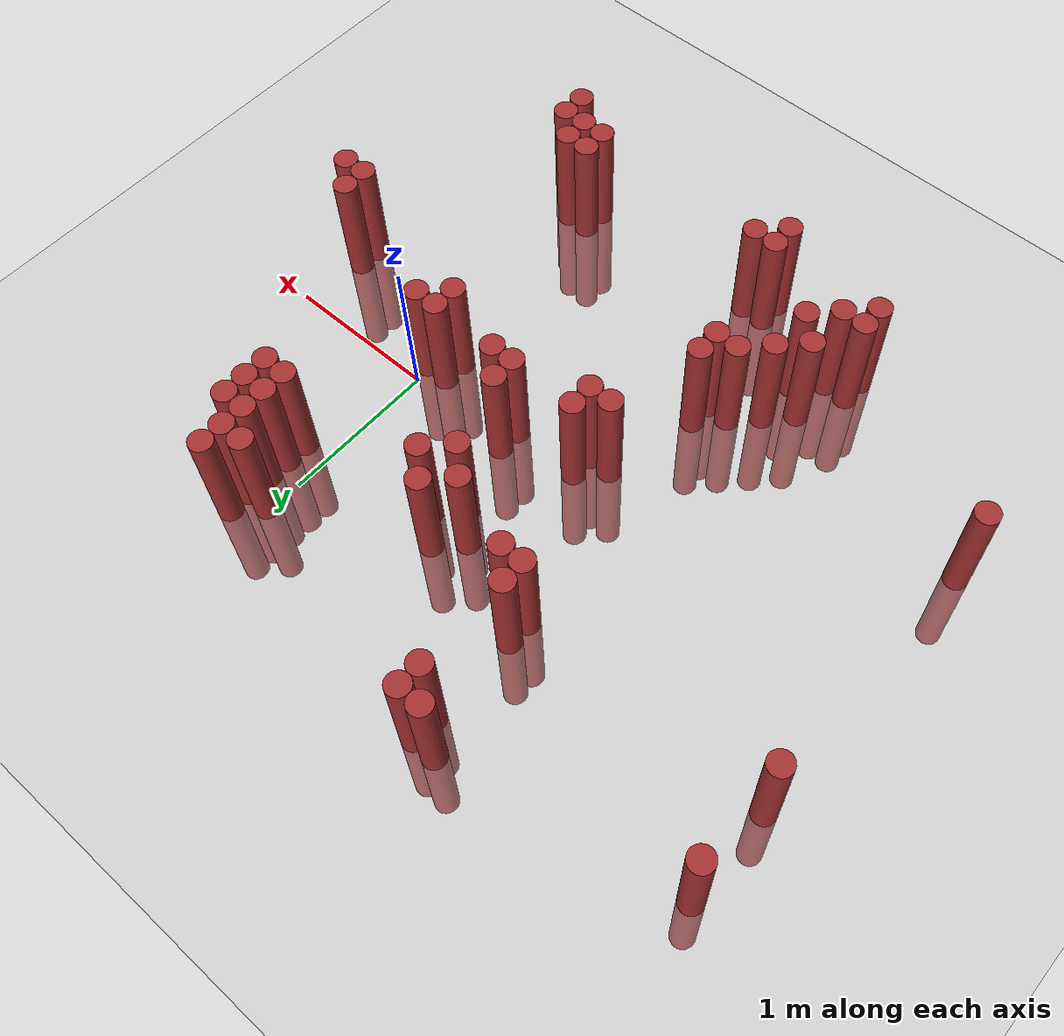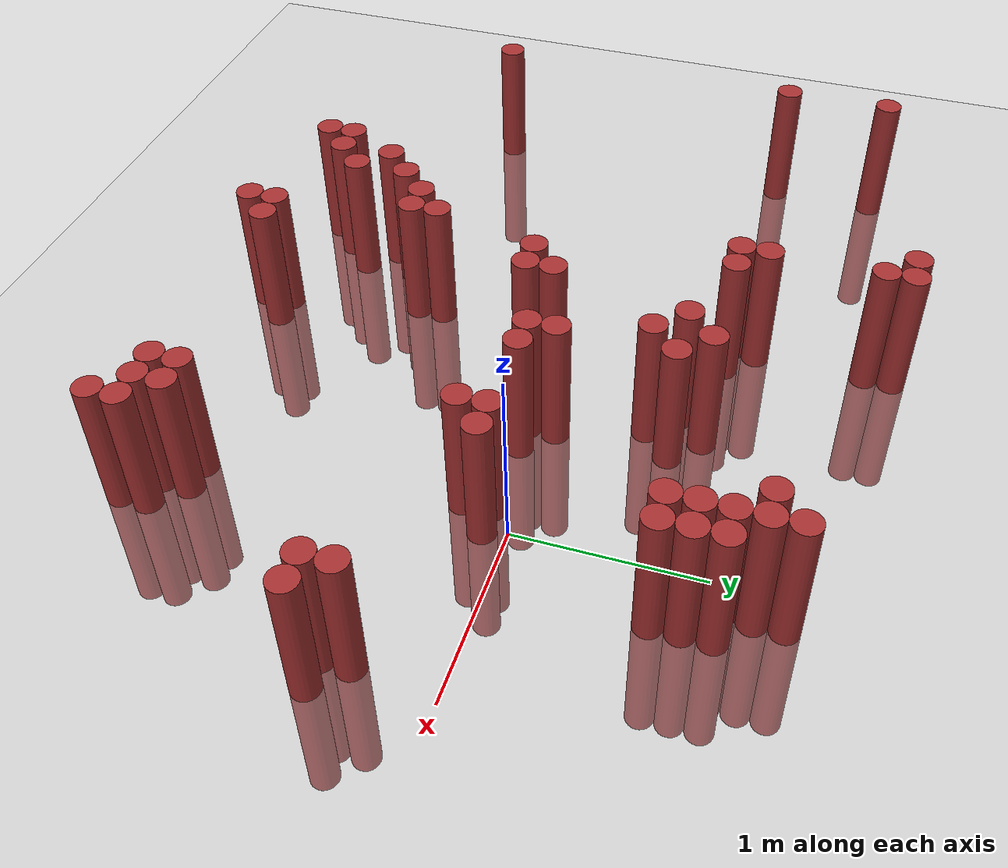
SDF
<sdf version="1.6">
 <world name="default">
  <model name="ground_plane">
   <static>1</static>
   <link name="link">
    <collision name="collision">
     <geometry><plane><normal>0 0 1</normal><size>100 100</size></plane></geometry>
     <surface><friction><ode><mu>100</mu><mu2>50</mu2></ode></friction></surface>
    </collision>
    <visual name="visual">
     <cast_shadows>0</cast_shadows>
     <geometry><plane><normal>0 0 1</normal><size>100 100</size></plane></geometry>
     <material>
      <script><uri>file://media/materials/scripts/gazebo.material</uri><name>Gazebo/Grey</name></script>
     </material>
    </visual>
   </link>
  </model>
  <model name="unit_cylinder_260">
   <static>1</static>
   <pose>-3.275000 -1.025000 0.000000 0.000000 0.000000 0.000000</pose>
   <link name="link">
    <inertial>
     <mass>1</mass>
     <inertia><ixx>0.145833</ixx><ixy>0</ixy><ixz>0</ixz><iyy>0.145833</iyy><iyz>0</iyz><izz>0.125</izz></inertia>
    </inertial>
    <collision name="collision">
     <geometry><cylinder><radius>0.075000</radius><length>1.5</length></cylinder></geometry>
    </collision>
    <visual name="visual">
     <geometry><cylinder><radius>0.075000</radius><length>1.5</length></cylinder></geometry>
     <material>
      <ambient>0.648000 0.192000 0.192000 1</ambient>
      <diffuse>0.648000 0.192000 0.192000 1</diffuse>
     </material>
     <material>
      <script><name>Gazebo/Grey</name><uri>file://media/materials/scripts/gazebo.material</uri></script>
     </material>
    </visual>
   </link>
  </model>
  <model name="unit_cylinder_261">
   <static>1</static>
   <pose>-3.275000 0.775000 0.000000 0.000000 0.000000 0.000000</pose>
   <link name="link">
    <inertial>
     <mass>1</mass>
     <inertia><ixx>0.145833</ixx><ixy>0</ixy><ixz>0</ixz><iyy>0.145833</iyy><iyz>0</iyz><izz>0.125</izz></inertia>
    </inertial>
    <collision name="collision">
     <geometry><cylinder><radius>0.075000</radius><length>1.5</length></cylinder></geometry>
    </collision>
    <visual name="visual">
     <geometry><cylinder><radius>0.075000</radius><length>1.5</length></cylinder></geometry>
     <material>
      <ambient>0.648000 0.192000 0.192000 1</ambient>
      <diffuse>0.648000 0.192000 0.192000 1</diffuse>
     </material>
     <material>
      <script><name>Gazebo/Grey</name><uri>file://media/materials/scripts/gazebo.material</uri></script>
     </material>
    </visual>
   </link>
  </model>
  <model name="unit_cylinder_262">
   <static>1</static>
   <pose>-3.275000 1.375000 0.000000 0.000000 0.000000 0.000000</pose>
   <link name="link">
    <inertial>
     <mass>1</mass>
     <inertia><ixx>0.145833</ixx><ixy>0</ixy><ixz>0</ixz><iyy>0.145833</iyy><iyz>0</iyz><izz>0.125</izz></inertia>
    </inertial>
    <collision name="collision">
     <geometry><cylinder><radius>0.075000</radius><length>1.5</length></cylinder></geometry>
    </collision>
    <visual name="visual">
     <geometry><cylinder><radius>0.075000</radius><length>1.5</length></cylinder></geometry>
     <material>
      <ambient>0.648000 0.192000 0.192000 1</ambient>
      <diffuse>0.648000 0.192000 0.192000 1</diffuse>
     </material>
     <material>
      <script><name>Gazebo/Grey</name><uri>file://media/materials/scripts/gazebo.material</uri></script>
     </material>
    </visual>
   </link>
  </model>
  <model name="unit_cylinder_310">
   <static>1</static>
   <pose>-2.075000 -1.775000 0.000000 0.000000 0.000000 0.000000</pose>
   <link name="link">
    <inertial>
     <mass>1</mass>
     <inertia><ixx>0.145833</ixx><ixy>0</ixy><ixz>0</ixz><iyy>0.145833</iyy><iyz>0</iyz><izz>0.125</izz></inertia>
    </inertial>
    <collision name="collision">
     <geometry><cylinder><radius>0.075000</radius><length>1.5</length></cylinder></geometry>
    </collision>
    <visual name="visual">
     <geometry><cylinder><radius>0.075000</radius><length>1.5</length></cylinder></geometry>
     <material>
      <ambient>0.648000 0.192000 0.192000 1</ambient>
      <diffuse>0.648000 0.192000 0.192000 1</diffuse>
     </material>
     <material>
      <script><name>Gazebo/Grey</name><uri>file://media/materials/scripts/gazebo.material</uri></script>
     </material>
    </visual>
   </link>
  </model>
  <model name="unit_cylinder_311">
   <static>1</static>
   <pose>-2.075000 -1.625000 0.000000 0.000000 0.000000 0.000000</pose>
   <link name="link">
    <inertial>
     <mass>1</mass>
     <inertia><ixx>0.145833</ixx><ixy>0</ixy><ixz>0</ixz><iyy>0.145833</iyy><iyz>0</iyz><izz>0.125</izz></inertia>
    </inertial>
    <collision name="collision">
     <geometry><cylinder><radius>0.075000</radius><length>1.5</length></cylinder></geometry>
    </collision>
    <visual name="visual">
     <geometry><cylinder><radius>0.075000</radius><length>1.5</length></cylinder></geometry>
     <material>
      <ambient>0.648000 0.192000 0.192000 1</ambient>
      <diffuse>0.648000 0.192000 0.192000 1</diffuse>
     </material>
     <material>
      <script><name>Gazebo/Grey</name><uri>file://media/materials/scripts/gazebo.material</uri></script>
     </material>
    </visual>
   </link>
  </model>
  <model name="unit_cylinder_314">
   <static>1</static>
   <pose>-1.925000 -1.625000 0.000000 0.000000 0.000000 0.000000</pose>
   <link name="link">
    <inertial>
     <mass>1</mass>
     <inertia><ixx>0.145833</ixx><ixy>0</ixy><ixz>0</ixz><iyy>0.145833</iyy><iyz>0</iyz><izz>0.125</izz></inertia>
    </inertial>
    <collision name="collision">
     <geometry><cylinder><radius>0.075000</radius><length>1.5</length></cylinder></geometry>
    </collision>
    <visual name="visual">
     <geometry><cylinder><radius>0.075000</radius><length>1.5</length></cylinder></geometry>
     <material>
      <ambient>0.648000 0.192000 0.192000 1</ambient>
      <diffuse>0.648000 0.192000 0.192000 1</diffuse>
     </material>
     <material>
      <script><name>Gazebo/Grey</name><uri>file://media/materials/scripts/gazebo.material</uri></script>
     </material>
    </visual>
   </link>
  </model>
  <model name="unit_cylinder_315">
   <static>1</static>
   <pose>-1.925000 -1.325000 0.000000 0.000000 0.000000 0.000000</pose>
   <link name="link">
    <inertial>
     <mass>1</mass>
     <inertia><ixx>0.145833</ixx><ixy>0</ixy><ixz>0</ixz><iyy>0.145833</iyy><iyz>0</iyz><izz>0.125</izz></inertia>
    </inertial>
    <collision name="collision">
     <geometry><cylinder><radius>0.075000</radius><length>1.5</length></cylinder></geometry>
    </collision>
    <visual name="visual">
     <geometry><cylinder><radius>0.075000</radius><length>1.5</length></cylinder></geometry>
     <material>
      <ambient>0.648000 0.192000 0.192000 1</ambient>
      <diffuse>0.648000 0.192000 0.192000 1</diffuse>
     </material>
     <material>
      <script><name>Gazebo/Grey</name><uri>file://media/materials/scripts/gazebo.material</uri></script>
     </material>
    </visual>
   </link>
  </model>
  <model name="unit_cylinder_316">
   <static>1</static>
   <pose>-1.775000 -1.475000 0.000000 0.000000 0.000000 0.000000</pose>
   <link name="link">
    <inertial>
     <mass>1</mass>
     <inertia><ixx>0.145833</ixx><ixy>0</ixy><ixz>0</ixz><iyy>0.145833</iyy><iyz>0</iyz><izz>0.125</izz></inertia>
    </inertial>
    <collision name="collision">
     <geometry><cylinder><radius>0.075000</radius><length>1.5</length></cylinder></geometry>
    </collision>
    <visual name="visual">
     <geometry><cylinder><radius>0.075000</radius><length>1.5</length></cylinder></geometry>
     <material>
      <ambient>0.648000 0.192000 0.192000 1</ambient>
      <diffuse>0.648000 0.192000 0.192000 1</diffuse>
     </material>
     <material>
      <script><name>Gazebo/Grey</name><uri>file://media/materials/scripts/gazebo.material</uri></script>
     </material>
    </visual>
   </link>
  </model>
  <model name="unit_cylinder_317">
   <static>1</static>
   <pose>-1.775000 -1.175000 0.000000 0.000000 0.000000 0.000000</pose>
   <link name="link">
    <inertial>
     <mass>1</mass>
     <inertia><ixx>0.145833</ixx><ixy>0</ixy><ixz>0</ixz><iyy>0.145833</iyy><iyz>0</iyz><izz>0.125</izz></inertia>
    </inertial>
    <collision name="collision">
     <geometry><cylinder><radius>0.075000</radius><length>1.5</length></cylinder></geometry>
    </collision>
    <visual name="visual">
     <geometry><cylinder><radius>0.075000</radius><length>1.5</length></cylinder></geometry>
     <material>
      <ambient>0.648000 0.192000 0.192000 1</ambient>
      <diffuse>0.648000 0.192000 0.192000 1</diffuse>
     </material>
     <material>
      <script><name>Gazebo/Grey</name><uri>file://media/materials/scripts/gazebo.material</uri></script>
     </material>
    </visual>
   </link>
  </model>
  <model name="unit_cylinder_318">
   <static>1</static>
   <pose>-1.775000 1.675000 0.000000 0.000000 0.000000 0.000000</pose>
   <link name="link">
    <inertial>
     <mass>1</mass>
     <inertia><ixx>0.145833</ixx><ixy>0</ixy><ixz>0</ixz><iyy>0.145833</iyy><iyz>0</iyz><izz>0.125</izz></inertia>
    </inertial>
    <collision name="collision">
     <geometry><cylinder><radius>0.075000</radius><length>1.5</length></cylinder></geometry>
    </collision>
    <visual name="visual">
     <geometry><cylinder><radius>0.075000</radius><length>1.5</length></cylinder></geometry>
     <material>
      <ambient>0.648000 0.192000 0.192000 1</ambient>
      <diffuse>0.648000 0.192000 0.192000 1</diffuse>
     </material>
     <material>
      <script><name>Gazebo/Grey</name><uri>file://media/materials/scripts/gazebo.material</uri></script>
     </material>
    </visual>
   </link>
  </model>
  <model name="unit_cylinder_319">
   <static>1</static>
   <pose>-1.625000 -1.025000 0.000000 0.000000 0.000000 0.000000</pose>
   <link name="link">
    <inertial>
     <mass>1</mass>
     <inertia><ixx>0.145833</ixx><ixy>0</ixy><ixz>0</ixz><iyy>0.145833</iyy><iyz>0</iyz><izz>0.125</izz></inertia>
    </inertial>
    <collision name="collision">
     <geometry><cylinder><radius>0.075000</radius><length>1.5</length></cylinder></geometry>
    </collision>
    <visual name="visual">
     <geometry><cylinder><radius>0.075000</radius><length>1.5</length></cylinder></geometry>
     <material>
      <ambient>0.648000 0.192000 0.192000 1</ambient>
      <diffuse>0.648000 0.192000 0.192000 1</diffuse>
     </material>
     <material>
      <script><name>Gazebo/Grey</name><uri>file://media/materials/scripts/gazebo.material</uri></script>
     </material>
    </visual>
   </link>
  </model>
  <model name="unit_cylinder_320">
   <static>1</static>
   <pose>-1.625000 0.775000 0.000000 0.000000 0.000000 0.000000</pose>
   <link name="link">
    <inertial>
     <mass>1</mass>
     <inertia><ixx>0.145833</ixx><ixy>0</ixy><ixz>0</ixz><iyy>0.145833</iyy><iyz>0</iyz><izz>0.125</izz></inertia>
    </inertial>
    <collision name="collision">
     <geometry><cylinder><radius>0.075000</radius><length>1.5</length></cylinder></geometry>
    </collision>
    <visual name="visual">
     <geometry><cylinder><radius>0.075000</radius><length>1.5</length></cylinder></geometry>
     <material>
      <ambient>0.648000 0.192000 0.192000 1</ambient>
      <diffuse>0.648000 0.192000 0.192000 1</diffuse>
     </material>
     <material>
      <script><name>Gazebo/Grey</name><uri>file://media/materials/scripts/gazebo.material</uri></script>
     </material>
    </visual>
   </link>
  </model>
  <model name="unit_cylinder_321">
   <static>1</static>
   <pose>-1.625000 0.925000 0.000000 0.000000 0.000000 0.000000</pose>
   <link name="link">
    <inertial>
     <mass>1</mass>
     <inertia><ixx>0.145833</ixx><ixy>0</ixy><ixz>0</ixz><iyy>0.145833</iyy><iyz>0</iyz><izz>0.125</izz></inertia>
    </inertial>
    <collision name="collision">
     <geometry><cylinder><radius>0.075000</radius><length>1.5</length></cylinder></geometry>
    </collision>
    <visual name="visual">
     <geometry><cylinder><radius>0.075000</radius><length>1.5</length></cylinder></geometry>
     <material>
      <ambient>0.648000 0.192000 0.192000 1</ambient>
      <diffuse>0.648000 0.192000 0.192000 1</diffuse>
     </material>
     <material>
      <script><name>Gazebo/Grey</name><uri>file://media/materials/scripts/gazebo.material</uri></script>
     </material>
    </visual>
   </link>
  </model>
  <model name="unit_cylinder_322">
   <static>1</static>
   <pose>-1.625000 1.525000 0.000000 0.000000 0.000000 0.000000</pose>
   <link name="link">
    <inertial>
     <mass>1</mass>
     <inertia><ixx>0.145833</ixx><ixy>0</ixy><ixz>0</ixz><iyy>0.145833</iyy><iyz>0</iyz><izz>0.125</izz></inertia>
    </inertial>
    <collision name="collision">
     <geometry><cylinder><radius>0.075000</radius><length>1.5</length></cylinder></geometry>
    </collision>
    <visual name="visual">
     <geometry><cylinder><radius>0.075000</radius><length>1.5</length></cylinder></geometry>
     <material>
      <ambient>0.648000 0.192000 0.192000 1</ambient>
      <diffuse>0.648000 0.192000 0.192000 1</diffuse>
     </material>
     <material>
      <script><name>Gazebo/Grey</name><uri>file://media/materials/scripts/gazebo.material</uri></script>
     </material>
    </visual>
   </link>
  </model>
  <model name="unit_cylinder_323">
   <static>1</static>
   <pose>-1.625000 1.675000 0.000000 0.000000 0.000000 0.000000</pose>
   <link name="link">
    <inertial>
     <mass>1</mass>
     <inertia><ixx>0.145833</ixx><ixy>0</ixy><ixz>0</ixz><iyy>0.145833</iyy><iyz>0</iyz><izz>0.125</izz></inertia>
    </inertial>
    <collision name="collision">
     <geometry><cylinder><radius>0.075000</radius><length>1.5</length></cylinder></geometry>
    </collision>
    <visual name="visual">
     <geometry><cylinder><radius>0.075000</radius><length>1.5</length></cylinder></geometry>
     <material>
      <ambient>0.648000 0.192000 0.192000 1</ambient>
      <diffuse>0.648000 0.192000 0.192000 1</diffuse>
     </material>
     <material>
      <script><name>Gazebo/Grey</name><uri>file://media/materials/scripts/gazebo.material</uri></script>
     </material>
    </visual>
   </link>
  </model>
  <model name="unit_cylinder_324">
   <static>1</static>
   <pose>-1.475000 -1.025000 0.000000 0.000000 0.000000 0.000000</pose>
   <link name="link">
    <inertial>
     <mass>1</mass>
     <inertia><ixx>0.145833</ixx><ixy>0</ixy><ixz>0</ixz><iyy>0.145833</iyy><iyz>0</iyz><izz>0.125</izz></inertia>
    </inertial>
    <collision name="collision">
     <geometry><cylinder><radius>0.075000</radius><length>1.5</length></cylinder></geometry>
    </collision>
    <visual name="visual">
     <geometry><cylinder><radius>0.075000</radius><length>1.5</length></cylinder></geometry>
     <material>
      <ambient>0.648000 0.192000 0.192000 1</ambient>
      <diffuse>0.648000 0.192000 0.192000 1</diffuse>
     </material>
     <material>
      <script><name>Gazebo/Grey</name><uri>file://media/materials/scripts/gazebo.material</uri></script>
     </material>
    </visual>
   </link>
  </model>
  <model name="unit_cylinder_325">
   <static>1</static>
   <pose>-1.475000 -0.875000 0.000000 0.000000 0.000000 0.000000</pose>
   <link name="link">
    <inertial>
     <mass>1</mass>
     <inertia><ixx>0.145833</ixx><ixy>0</ixy><ixz>0</ixz><iyy>0.145833</iyy><iyz>0</iyz><izz>0.125</izz></inertia>
    </inertial>
    <collision name="collision">
     <geometry><cylinder><radius>0.075000</radius><length>1.5</length></cylinder></geometry>
    </collision>
    <visual name="visual">
     <geometry><cylinder><radius>0.075000</radius><length>1.5</length></cylinder></geometry>
     <material>
      <ambient>0.648000 0.192000 0.192000 1</ambient>
      <diffuse>0.648000 0.192000 0.192000 1</diffuse>
     </material>
     <material>
      <script><name>Gazebo/Grey</name><uri>file://media/materials/scripts/gazebo.material</uri></script>
     </material>
    </visual>
   </link>
  </model>
  <model name="unit_cylinder_326">
   <static>1</static>
   <pose>-1.475000 0.775000 0.000000 0.000000 0.000000 0.000000</pose>
   <link name="link">
    <inertial>
     <mass>1</mass>
     <inertia><ixx>0.145833</ixx><ixy>0</ixy><ixz>0</ixz><iyy>0.145833</iyy><iyz>0</iyz><izz>0.125</izz></inertia>
    </inertial>
    <collision name="collision">
     <geometry><cylinder><radius>0.075000</radius><length>1.5</length></cylinder></geometry>
    </collision>
    <visual name="visual">
     <geometry><cylinder><radius>0.075000</radius><length>1.5</length></cylinder></geometry>
     <material>
      <ambient>0.648000 0.192000 0.192000 1</ambient>
      <diffuse>0.648000 0.192000 0.192000 1</diffuse>
     </material>
     <material>
      <script><name>Gazebo/Grey</name><uri>file://media/materials/scripts/gazebo.material</uri></script>
     </material>
    </visual>
   </link>
  </model>
  <model name="unit_cylinder_327">
   <static>1</static>
   <pose>-1.325000 -1.925000 0.000000 0.000000 0.000000 0.000000</pose>
   <link name="link">
    <inertial>
     <mass>1</mass>
     <inertia><ixx>0.145833</ixx><ixy>0</ixy><ixz>0</ixz><iyy>0.145833</iyy><iyz>0</iyz><izz>0.125</izz></inertia>
    </inertial>
    <collision name="collision">
     <geometry><cylinder><radius>0.075000</radius><length>1.5</length></cylinder></geometry>
    </collision>
    <visual name="visual">
     <geometry><cylinder><radius>0.075000</radius><length>1.5</length></cylinder></geometry>
     <material>
      <ambient>0.648000 0.192000 0.192000 1</ambient>
      <diffuse>0.648000 0.192000 0.192000 1</diffuse>
     </material>
     <material>
      <script><name>Gazebo/Grey</name><uri>file://media/materials/scripts/gazebo.material</uri></script>
     </material>
    </visual>
   </link>
  </model>
  <model name="unit_cylinder_328">
   <static>1</static>
   <pose>-1.325000 -1.775000 0.000000 0.000000 0.000000 0.000000</pose>
   <link name="link">
    <inertial>
     <mass>1</mass>
     <inertia><ixx>0.145833</ixx><ixy>0</ixy><ixz>0</ixz><iyy>0.145833</iyy><iyz>0</iyz><izz>0.125</izz></inertia>
    </inertial>
    <collision name="collision">
     <geometry><cylinder><radius>0.075000</radius><length>1.5</length></cylinder></geometry>
    </collision>
    <visual name="visual">
     <geometry><cylinder><radius>0.075000</radius><length>1.5</length></cylinder></geometry>
     <material>
      <ambient>0.648000 0.192000 0.192000 1</ambient>
      <diffuse>0.648000 0.192000 0.192000 1</diffuse>
     </material>
     <material>
      <script><name>Gazebo/Grey</name><uri>file://media/materials/scripts/gazebo.material</uri></script>
     </material>
    </visual>
   </link>
  </model>
  <model name="unit_cylinder_329">
   <static>1</static>
   <pose>-1.325000 -0.275000 0.000000 0.000000 0.000000 0.000000</pose>
   <link name="link">
    <inertial>
     <mass>1</mass>
     <inertia><ixx>0.145833</ixx><ixy>0</ixy><ixz>0</ixz><iyy>0.145833</iyy><iyz>0</iyz><izz>0.125</izz></inertia>
    </inertial>
    <collision name="collision">
     <geometry><cylinder><radius>0.075000</radius><length>1.5</length></cylinder></geometry>
    </collision>
    <visual name="visual">
     <geometry><cylinder><radius>0.075000</radius><length>1.5</length></cylinder></geometry>
     <material>
      <ambient>0.648000 0.192000 0.192000 1</ambient>
      <diffuse>0.648000 0.192000 0.192000 1</diffuse>
     </material>
     <material>
      <script><name>Gazebo/Grey</name><uri>file://media/materials/scripts/gazebo.material</uri></script>
     </material>
    </visual>
   </link>
  </model>
  <model name="unit_cylinder_330">
   <static>1</static>
   <pose>-1.175000 -1.775000 0.000000 0.000000 0.000000 0.000000</pose>
   <link name="link">
    <inertial>
     <mass>1</mass>
     <inertia><ixx>0.145833</ixx><ixy>0</ixy><ixz>0</ixz><iyy>0.145833</iyy><iyz>0</iyz><izz>0.125</izz></inertia>
    </inertial>
    <collision name="collision">
     <geometry><cylinder><radius>0.075000</radius><length>1.5</length></cylinder></geometry>
    </collision>
    <visual name="visual">
     <geometry><cylinder><radius>0.075000</radius><length>1.5</length></cylinder></geometry>
     <material>
      <ambient>0.648000 0.192000 0.192000 1</ambient>
      <diffuse>0.648000 0.192000 0.192000 1</diffuse>
     </material>
     <material>
      <script><name>Gazebo/Grey</name><uri>file://media/materials/scripts/gazebo.material</uri></script>
     </material>
    </visual>
   </link>
  </model>
  <model name="unit_cylinder_331">
   <static>1</static>
   <pose>-1.175000 -0.275000 0.000000 0.000000 0.000000 0.000000</pose>
   <link name="link">
    <inertial>
     <mass>1</mass>
     <inertia><ixx>0.145833</ixx><ixy>0</ixy><ixz>0</ixz><iyy>0.145833</iyy><iyz>0</iyz><izz>0.125</izz></inertia>
    </inertial>
    <collision name="collision">
     <geometry><cylinder><radius>0.075000</radius><length>1.5</length></cylinder></geometry>
    </collision>
    <visual name="visual">
     <geometry><cylinder><radius>0.075000</radius><length>1.5</length></cylinder></geometry>
     <material>
      <ambient>0.648000 0.192000 0.192000 1</ambient>
      <diffuse>0.648000 0.192000 0.192000 1</diffuse>
     </material>
     <material>
      <script><name>Gazebo/Grey</name><uri>file://media/materials/scripts/gazebo.material</uri></script>
     </material>
    </visual>
   </link>
  </model>
  <model name="unit_cylinder_332">
   <static>1</static>
   <pose>-1.175000 -0.125000 0.000000 0.000000 0.000000 0.000000</pose>
   <link name="link">
    <inertial>
     <mass>1</mass>
     <inertia><ixx>0.145833</ixx><ixy>0</ixy><ixz>0</ixz><iyy>0.145833</iyy><iyz>0</iyz><izz>0.125</izz></inertia>
    </inertial>
    <collision name="collision">
     <geometry><cylinder><radius>0.075000</radius><length>1.5</length></cylinder></geometry>
    </collision>
    <visual name="visual">
     <geometry><cylinder><radius>0.075000</radius><length>1.5</length></cylinder></geometry>
     <material>
      <ambient>0.648000 0.192000 0.192000 1</ambient>
      <diffuse>0.648000 0.192000 0.192000 1</diffuse>
     </material>
     <material>
      <script><name>Gazebo/Grey</name><uri>file://media/materials/scripts/gazebo.material</uri></script>
     </material>
    </visual>
   </link>
  </model>
  <model name="unit_cylinder_335">
   <static>1</static>
   <pose>-1.025000 0.625000 0.000000 0.000000 0.000000 0.000000</pose>
   <link name="link">
    <inertial>
     <mass>1</mass>
     <inertia><ixx>0.145833</ixx><ixy>0</ixy><ixz>0</ixz><iyy>0.145833</iyy><iyz>0</iyz><izz>0.125</izz></inertia>
    </inertial>
    <collision name="collision">
     <geometry><cylinder><radius>0.075000</radius><length>1.5</length></cylinder></geometry>
    </collision>
    <visual name="visual">
     <geometry><cylinder><radius>0.075000</radius><length>1.5</length></cylinder></geometry>
     <material>
      <ambient>0.648000 0.192000 0.192000 1</ambient>
      <diffuse>0.648000 0.192000 0.192000 1</diffuse>
     </material>
     <material>
      <script><name>Gazebo/Grey</name><uri>file://media/materials/scripts/gazebo.material</uri></script>
     </material>
    </visual>
   </link>
  </model>
  <model name="unit_cylinder_339">
   <static>1</static>
   <pose>-0.875000 0.475000 0.000000 0.000000 0.000000 0.000000</pose>
   <link name="link">
    <inertial>
     <mass>1</mass>
     <inertia><ixx>0.145833</ixx><ixy>0</ixy><ixz>0</ixz><iyy>0.145833</iyy><iyz>0</iyz><izz>0.125</izz></inertia>
    </inertial>
    <collision name="collision">
     <geometry><cylinder><radius>0.075000</radius><length>1.5</length></cylinder></geometry>
    </collision>
    <visual name="visual">
     <geometry><cylinder><radius>0.075000</radius><length>1.5</length></cylinder></geometry>
     <material>
      <ambient>0.648000 0.192000 0.192000 1</ambient>
      <diffuse>0.648000 0.192000 0.192000 1</diffuse>
     </material>
     <material>
      <script><name>Gazebo/Grey</name><uri>file://media/materials/scripts/gazebo.material</uri></script>
     </material>
    </visual>
   </link>
  </model>
  <model name="unit_cylinder_340">
   <static>1</static>
   <pose>-0.875000 0.775000 0.000000 0.000000 0.000000 0.000000</pose>
   <link name="link">
    <inertial>
     <mass>1</mass>
     <inertia><ixx>0.145833</ixx><ixy>0</ixy><ixz>0</ixz><iyy>0.145833</iyy><iyz>0</iyz><izz>0.125</izz></inertia>
    </inertial>
    <collision name="collision">
     <geometry><cylinder><radius>0.075000</radius><length>1.5</length></cylinder></geometry>
    </collision>
    <visual name="visual">
     <geometry><cylinder><radius>0.075000</radius><length>1.5</length></cylinder></geometry>
     <material>
      <ambient>0.648000 0.192000 0.192000 1</ambient>
      <diffuse>0.648000 0.192000 0.192000 1</diffuse>
     </material>
     <material>
      <script><name>Gazebo/Grey</name><uri>file://media/materials/scripts/gazebo.material</uri></script>
     </material>
    </visual>
   </link>
  </model>
  <model name="unit_cylinder_344">
   <static>1</static>
   <pose>-0.725000 -0.125000 0.000000 0.000000 0.000000 0.000000</pose>
   <link name="link">
    <inertial>
     <mass>1</mass>
     <inertia><ixx>0.145833</ixx><ixy>0</ixy><ixz>0</ixz><iyy>0.145833</iyy><iyz>0</iyz><izz>0.125</izz></inertia>
    </inertial>
    <collision name="collision">
     <geometry><cylinder><radius>0.075000</radius><length>1.5</length></cylinder></geometry>
    </collision>
    <visual name="visual">
     <geometry><cylinder><radius>0.075000</radius><length>1.5</length></cylinder></geometry>
     <material>
      <ambient>0.648000 0.192000 0.192000 1</ambient>
      <diffuse>0.648000 0.192000 0.192000 1</diffuse>
     </material>
     <material>
      <script><name>Gazebo/Grey</name><uri>file://media/materials/scripts/gazebo.material</uri></script>
     </material>
    </visual>
   </link>
  </model>
  <model name="unit_cylinder_345">
   <static>1</static>
   <pose>-0.725000 0.025000 0.000000 0.000000 0.000000 0.000000</pose>
   <link name="link">
    <inertial>
     <mass>1</mass>
     <inertia><ixx>0.145833</ixx><ixy>0</ixy><ixz>0</ixz><iyy>0.145833</iyy><iyz>0</iyz><izz>0.125</izz></inertia>
    </inertial>
    <collision name="collision">
     <geometry><cylinder><radius>0.075000</radius><length>1.5</length></cylinder></geometry>
    </collision>
    <visual name="visual">
     <geometry><cylinder><radius>0.075000</radius><length>1.5</length></cylinder></geometry>
     <material>
      <ambient>0.648000 0.192000 0.192000 1</ambient>
      <diffuse>0.648000 0.192000 0.192000 1</diffuse>
     </material>
     <material>
      <script><name>Gazebo/Grey</name><uri>file://media/materials/scripts/gazebo.material</uri></script>
     </material>
    </visual>
   </link>
  </model>
  <model name="unit_cylinder_346">
   <static>1</static>
   <pose>-0.725000 0.625000 0.000000 0.000000 0.000000 0.000000</pose>
   <link name="link">
    <inertial>
     <mass>1</mass>
     <inertia><ixx>0.145833</ixx><ixy>0</ixy><ixz>0</ixz><iyy>0.145833</iyy><iyz>0</iyz><izz>0.125</izz></inertia>
    </inertial>
    <collision name="collision">
     <geometry><cylinder><radius>0.075000</radius><length>1.5</length></cylinder></geometry>
    </collision>
    <visual name="visual">
     <geometry><cylinder><radius>0.075000</radius><length>1.5</length></cylinder></geometry>
     <material>
      <ambient>0.648000 0.192000 0.192000 1</ambient>
      <diffuse>0.648000 0.192000 0.192000 1</diffuse>
     </material>
     <material>
      <script><name>Gazebo/Grey</name><uri>file://media/materials/scripts/gazebo.material</uri></script>
     </material>
    </visual>
   </link>
  </model>
  <model name="unit_cylinder_348">
   <static>1</static>
   <pose>-0.575000 -0.125000 0.000000 0.000000 0.000000 0.000000</pose>
   <link name="link">
    <inertial>
     <mass>1</mass>
     <inertia><ixx>0.145833</ixx><ixy>0</ixy><ixz>0</ixz><iyy>0.145833</iyy><iyz>0</iyz><izz>0.125</izz></inertia>
    </inertial>
    <collision name="collision">
     <geometry><cylinder><radius>0.075000</radius><length>1.5</length></cylinder></geometry>
    </collision>
    <visual name="visual">
     <geometry><cylinder><radius>0.075000</radius><length>1.5</length></cylinder></geometry>
     <material>
      <ambient>0.648000 0.192000 0.192000 1</ambient>
      <diffuse>0.648000 0.192000 0.192000 1</diffuse>
     </material>
     <material>
      <script><name>Gazebo/Grey</name><uri>file://media/materials/scripts/gazebo.material</uri></script>
     </material>
    </visual>
   </link>
  </model>
  <model name="unit_cylinder_356">
   <static>1</static>
   <pose>-0.125000 -0.275000 0.000000 0.000000 0.000000 0.000000</pose>
   <link name="link">
    <inertial>
     <mass>1</mass>
     <inertia><ixx>0.145833</ixx><ixy>0</ixy><ixz>0</ixz><iyy>0.145833</iyy><iyz>0</iyz><izz>0.125</izz></inertia>
    </inertial>
    <collision name="collision">
     <geometry><cylinder><radius>0.075000</radius><length>1.5</length></cylinder></geometry>
    </collision>
    <visual name="visual">
     <geometry><cylinder><radius>0.075000</radius><length>1.5</length></cylinder></geometry>
     <material>
      <ambient>0.648000 0.192000 0.192000 1</ambient>
      <diffuse>0.648000 0.192000 0.192000 1</diffuse>
     </material>
     <material>
      <script><name>Gazebo/Grey</name><uri>file://media/materials/scripts/gazebo.material</uri></script>
     </material>
    </visual>
   </link>
  </model>
  <model name="unit_cylinder_357">
   <static>1</static>
   <pose>-0.125000 -0.125000 0.000000 0.000000 0.000000 0.000000</pose>
   <link name="link">
    <inertial>
     <mass>1</mass>
     <inertia><ixx>0.145833</ixx><ixy>0</ixy><ixz>0</ixz><iyy>0.145833</iyy><iyz>0</iyz><izz>0.125</izz></inertia>
    </inertial>
    <collision name="collision">
     <geometry><cylinder><radius>0.075000</radius><length>1.5</length></cylinder></geometry>
    </collision>
    <visual name="visual">
     <geometry><cylinder><radius>0.075000</radius><length>1.5</length></cylinder></geometry>
     <material>
      <ambient>0.648000 0.192000 0.192000 1</ambient>
      <diffuse>0.648000 0.192000 0.192000 1</diffuse>
     </material>
     <material>
      <script><name>Gazebo/Grey</name><uri>file://media/materials/scripts/gazebo.material</uri></script>
     </material>
    </visual>
   </link>
  </model>
  <model name="unit_cylinder_359">
   <static>1</static>
   <pose>0.025000 -1.775000 0.000000 0.000000 0.000000 0.000000</pose>
   <link name="link">
    <inertial>
     <mass>1</mass>
     <inertia><ixx>0.145833</ixx><ixy>0</ixy><ixz>0</ixz><iyy>0.145833</iyy><iyz>0</iyz><izz>0.125</izz></inertia>
    </inertial>
    <collision name="collision">
     <geometry><cylinder><radius>0.075000</radius><length>1.5</length></cylinder></geometry>
    </collision>
    <visual name="visual">
     <geometry><cylinder><radius>0.075000</radius><length>1.5</length></cylinder></geometry>
     <material>
      <ambient>0.648000 0.192000 0.192000 1</ambient>
      <diffuse>0.648000 0.192000 0.192000 1</diffuse>
     </material>
     <material>
      <script><name>Gazebo/Grey</name><uri>file://media/materials/scripts/gazebo.material</uri></script>
     </material>
    </visual>
   </link>
  </model>
  <model name="unit_cylinder_360">
   <static>1</static>
   <pose>0.025000 -1.625000 0.000000 0.000000 0.000000 0.000000</pose>
   <link name="link">
    <inertial>
     <mass>1</mass>
     <inertia><ixx>0.145833</ixx><ixy>0</ixy><ixz>0</ixz><iyy>0.145833</iyy><iyz>0</iyz><izz>0.125</izz></inertia>
    </inertial>
    <collision name="collision">
     <geometry><cylinder><radius>0.075000</radius><length>1.5</length></cylinder></geometry>
    </collision>
    <visual name="visual">
     <geometry><cylinder><radius>0.075000</radius><length>1.5</length></cylinder></geometry>
     <material>
      <ambient>0.648000 0.192000 0.192000 1</ambient>
      <diffuse>0.648000 0.192000 0.192000 1</diffuse>
     </material>
     <material>
      <script><name>Gazebo/Grey</name><uri>file://media/materials/scripts/gazebo.material</uri></script>
     </material>
    </visual>
   </link>
  </model>
  <model name="unit_cylinder_361">
   <static>1</static>
   <pose>0.025000 -0.125000 0.000000 0.000000 0.000000 0.000000</pose>
   <link name="link">
    <inertial>
     <mass>1</mass>
     <inertia><ixx>0.145833</ixx><ixy>0</ixy><ixz>0</ixz><iyy>0.145833</iyy><iyz>0</iyz><izz>0.125</izz></inertia>
    </inertial>
    <collision name="collision">
     <geometry><cylinder><radius>0.075000</radius><length>1.5</length></cylinder></geometry>
    </collision>
    <visual name="visual">
     <geometry><cylinder><radius>0.075000</radius><length>1.5</length></cylinder></geometry>
     <material>
      <ambient>0.648000 0.192000 0.192000 1</ambient>
      <diffuse>0.648000 0.192000 0.192000 1</diffuse>
     </material>
     <material>
      <script><name>Gazebo/Grey</name><uri>file://media/materials/scripts/gazebo.material</uri></script>
     </material>
    </visual>
   </link>
  </model>
  <model name="unit_cylinder_362">
   <static>1</static>
   <pose>0.025000 1.225000 0.000000 0.000000 0.000000 0.000000</pose>
   <link name="link">
    <inertial>
     <mass>1</mass>
     <inertia><ixx>0.145833</ixx><ixy>0</ixy><ixz>0</ixz><iyy>0.145833</iyy><iyz>0</iyz><izz>0.125</izz></inertia>
    </inertial>
    <collision name="collision">
     <geometry><cylinder><radius>0.075000</radius><length>1.5</length></cylinder></geometry>
    </collision>
    <visual name="visual">
     <geometry><cylinder><radius>0.075000</radius><length>1.5</length></cylinder></geometry>
     <material>
      <ambient>0.648000 0.192000 0.192000 1</ambient>
      <diffuse>0.648000 0.192000 0.192000 1</diffuse>
     </material>
     <material>
      <script><name>Gazebo/Grey</name><uri>file://media/materials/scripts/gazebo.material</uri></script>
     </material>
    </visual>
   </link>
  </model>
  <model name="unit_cylinder_367">
   <static>1</static>
   <pose>0.175000 -1.775000 0.000000 0.000000 0.000000 0.000000</pose>
   <link name="link">
    <inertial>
     <mass>1</mass>
     <inertia><ixx>0.145833</ixx><ixy>0</ixy><ixz>0</ixz><iyy>0.145833</iyy><iyz>0</iyz><izz>0.125</izz></inertia>
    </inertial>
    <collision name="collision">
     <geometry><cylinder><radius>0.075000</radius><length>1.5</length></cylinder></geometry>
    </collision>
    <visual name="visual">
     <geometry><cylinder><radius>0.075000</radius><length>1.5</length></cylinder></geometry>
     <material>
      <ambient>0.648000 0.192000 0.192000 1</ambient>
      <diffuse>0.648000 0.192000 0.192000 1</diffuse>
     </material>
     <material>
      <script><name>Gazebo/Grey</name><uri>file://media/materials/scripts/gazebo.material</uri></script>
     </material>
    </visual>
   </link>
  </model>
  <model name="unit_cylinder_368">
   <static>1</static>
   <pose>0.175000 -1.625000 0.000000 0.000000 0.000000 0.000000</pose>
   <link name="link">
    <inertial>
     <mass>1</mass>
     <inertia><ixx>0.145833</ixx><ixy>0</ixy><ixz>0</ixz><iyy>0.145833</iyy><iyz>0</iyz><izz>0.125</izz></inertia>
    </inertial>
    <collision name="collision">
     <geometry><cylinder><radius>0.075000</radius><length>1.5</length></cylinder></geometry>
    </collision>
    <visual name="visual">
     <geometry><cylinder><radius>0.075000</radius><length>1.5</length></cylinder></geometry>
     <material>
      <ambient>0.648000 0.192000 0.192000 1</ambient>
      <diffuse>0.648000 0.192000 0.192000 1</diffuse>
     </material>
     <material>
      <script><name>Gazebo/Grey</name><uri>file://media/materials/scripts/gazebo.material</uri></script>
     </material>
    </visual>
   </link>
  </model>
  <model name="unit_cylinder_369">
   <static>1</static>
   <pose>0.175000 0.775000 0.000000 0.000000 0.000000 0.000000</pose>
   <link name="link">
    <inertial>
     <mass>1</mass>
     <inertia><ixx>0.145833</ixx><ixy>0</ixy><ixz>0</ixz><iyy>0.145833</iyy><iyz>0</iyz><izz>0.125</izz></inertia>
    </inertial>
    <collision name="collision">
     <geometry><cylinder><radius>0.075000</radius><length>1.5</length></cylinder></geometry>
    </collision>
    <visual name="visual">
     <geometry><cylinder><radius>0.075000</radius><length>1.5</length></cylinder></geometry>
     <material>
      <ambient>0.648000 0.192000 0.192000 1</ambient>
      <diffuse>0.648000 0.192000 0.192000 1</diffuse>
     </material>
     <material>
      <script><name>Gazebo/Grey</name><uri>file://media/materials/scripts/gazebo.material</uri></script>
     </material>
    </visual>
   </link>
  </model>
  <model name="unit_cylinder_370">
   <static>1</static>
   <pose>0.175000 0.925000 0.000000 0.000000 0.000000 0.000000</pose>
   <link name="link">
    <inertial>
     <mass>1</mass>
     <inertia><ixx>0.145833</ixx><ixy>0</ixy><ixz>0</ixz><iyy>0.145833</iyy><iyz>0</iyz><izz>0.125</izz></inertia>
    </inertial>
    <collision name="collision">
     <geometry><cylinder><radius>0.075000</radius><length>1.5</length></cylinder></geometry>
    </collision>
    <visual name="visual">
     <geometry><cylinder><radius>0.075000</radius><length>1.5</length></cylinder></geometry>
     <material>
      <ambient>0.648000 0.192000 0.192000 1</ambient>
      <diffuse>0.648000 0.192000 0.192000 1</diffuse>
     </material>
     <material>
      <script><name>Gazebo/Grey</name><uri>file://media/materials/scripts/gazebo.material</uri></script>
     </material>
    </visual>
   </link>
  </model>
  <model name="unit_cylinder_371">
   <static>1</static>
   <pose>0.175000 1.075000 0.000000 0.000000 0.000000 0.000000</pose>
   <link name="link">
    <inertial>
     <mass>1</mass>
     <inertia><ixx>0.145833</ixx><ixy>0</ixy><ixz>0</ixz><iyy>0.145833</iyy><iyz>0</iyz><izz>0.125</izz></inertia>
    </inertial>
    <collision name="collision">
     <geometry><cylinder><radius>0.075000</radius><length>1.5</length></cylinder></geometry>
    </collision>
    <visual name="visual">
     <geometry><cylinder><radius>0.075000</radius><length>1.5</length></cylinder></geometry>
     <material>
      <ambient>0.648000 0.192000 0.192000 1</ambient>
      <diffuse>0.648000 0.192000 0.192000 1</diffuse>
     </material>
     <material>
      <script><name>Gazebo/Grey</name><uri>file://media/materials/scripts/gazebo.material</uri></script>
     </material>
    </visual>
   </link>
  </model>
  <model name="unit_cylinder_372">
   <static>1</static>
   <pose>0.175000 1.225000 0.000000 0.000000 0.000000 0.000000</pose>
   <link name="link">
    <inertial>
     <mass>1</mass>
     <inertia><ixx>0.145833</ixx><ixy>0</ixy><ixz>0</ixz><iyy>0.145833</iyy><iyz>0</iyz><izz>0.125</izz></inertia>
    </inertial>
    <collision name="collision">
     <geometry><cylinder><radius>0.075000</radius><length>1.5</length></cylinder></geometry>
    </collision>
    <visual name="visual">
     <geometry><cylinder><radius>0.075000</radius><length>1.5</length></cylinder></geometry>
     <material>
      <ambient>0.648000 0.192000 0.192000 1</ambient>
      <diffuse>0.648000 0.192000 0.192000 1</diffuse>
     </material>
     <material>
      <script><name>Gazebo/Grey</name><uri>file://media/materials/scripts/gazebo.material</uri></script>
     </material>
    </visual>
   </link>
  </model>
  <model name="unit_cylinder_373">
   <static>1</static>
   <pose>0.175000 1.375000 0.000000 0.000000 0.000000 0.000000</pose>
   <link name="link">
    <inertial>
     <mass>1</mass>
     <inertia><ixx>0.145833</ixx><ixy>0</ixy><ixz>0</ixz><iyy>0.145833</iyy><iyz>0</iyz><izz>0.125</izz></inertia>
    </inertial>
    <collision name="collision">
     <geometry><cylinder><radius>0.075000</radius><length>1.5</length></cylinder></geometry>
    </collision>
    <visual name="visual">
     <geometry><cylinder><radius>0.075000</radius><length>1.5</length></cylinder></geometry>
     <material>
      <ambient>0.648000 0.192000 0.192000 1</ambient>
      <diffuse>0.648000 0.192000 0.192000 1</diffuse>
     </material>
     <material>
      <script><name>Gazebo/Grey</name><uri>file://media/materials/scripts/gazebo.material</uri></script>
     </material>
    </visual>
   </link>
  </model>
  <model name="unit_cylinder_380">
   <static>1</static>
   <pose>0.325000 -1.925000 0.000000 0.000000 0.000000 0.000000</pose>
   <link name="link">
    <inertial>
     <mass>1</mass>
     <inertia><ixx>0.145833</ixx><ixy>0</ixy><ixz>0</ixz><iyy>0.145833</iyy><iyz>0</iyz><izz>0.125</izz></inertia>
    </inertial>
    <collision name="collision">
     <geometry><cylinder><radius>0.075000</radius><length>1.5</length></cylinder></geometry>
    </collision>
    <visual name="visual">
     <geometry><cylinder><radius>0.075000</radius><length>1.5</length></cylinder></geometry>
     <material>
      <ambient>0.648000 0.192000 0.192000 1</ambient>
      <diffuse>0.648000 0.192000 0.192000 1</diffuse>
     </material>
     <material>
      <script><name>Gazebo/Grey</name><uri>file://media/materials/scripts/gazebo.material</uri></script>
     </material>
    </visual>
   </link>
  </model>
  <model name="unit_cylinder_381">
   <static>1</static>
   <pose>0.325000 -1.775000 0.000000 0.000000 0.000000 0.000000</pose>
   <link name="link">
    <inertial>
     <mass>1</mass>
     <inertia><ixx>0.145833</ixx><ixy>0</ixy><ixz>0</ixz><iyy>0.145833</iyy><iyz>0</iyz><izz>0.125</izz></inertia>
    </inertial>
    <collision name="collision">
     <geometry><cylinder><radius>0.075000</radius><length>1.5</length></cylinder></geometry>
    </collision>
    <visual name="visual">
     <geometry><cylinder><radius>0.075000</radius><length>1.5</length></cylinder></geometry>
     <material>
      <ambient>0.648000 0.192000 0.192000 1</ambient>
      <diffuse>0.648000 0.192000 0.192000 1</diffuse>
     </material>
     <material>
      <script><name>Gazebo/Grey</name><uri>file://media/materials/scripts/gazebo.material</uri></script>
     </material>
    </visual>
   </link>
  </model>
  <model name="unit_cylinder_382">
   <static>1</static>
   <pose>0.325000 0.775000 0.000000 0.000000 0.000000 0.000000</pose>
   <link name="link">
    <inertial>
     <mass>1</mass>
     <inertia><ixx>0.145833</ixx><ixy>0</ixy><ixz>0</ixz><iyy>0.145833</iyy><iyz>0</iyz><izz>0.125</izz></inertia>
    </inertial>
    <collision name="collision">
     <geometry><cylinder><radius>0.075000</radius><length>1.5</length></cylinder></geometry>
    </collision>
    <visual name="visual">
     <geometry><cylinder><radius>0.075000</radius><length>1.5</length></cylinder></geometry>
     <material>
      <ambient>0.648000 0.192000 0.192000 1</ambient>
      <diffuse>0.648000 0.192000 0.192000 1</diffuse>
     </material>
     <material>
      <script><name>Gazebo/Grey</name><uri>file://media/materials/scripts/gazebo.material</uri></script>
     </material>
    </visual>
   </link>
  </model>
  <model name="unit_cylinder_383">
   <static>1</static>
   <pose>0.325000 0.925000 0.000000 0.000000 0.000000 0.000000</pose>
   <link name="link">
    <inertial>
     <mass>1</mass>
     <inertia><ixx>0.145833</ixx><ixy>0</ixy><ixz>0</ixz><iyy>0.145833</iyy><iyz>0</iyz><izz>0.125</izz></inertia>
    </inertial>
    <collision name="collision">
     <geometry><cylinder><radius>0.075000</radius><length>1.5</length></cylinder></geometry>
    </collision>
    <visual name="visual">
     <geometry><cylinder><radius>0.075000</radius><length>1.5</length></cylinder></geometry>
     <material>
      <ambient>0.648000 0.192000 0.192000 1</ambient>
      <diffuse>0.648000 0.192000 0.192000 1</diffuse>
     </material>
     <material>
      <script><name>Gazebo/Grey</name><uri>file://media/materials/scripts/gazebo.material</uri></script>
     </material>
    </visual>
   </link>
  </model>
  <model name="unit_cylinder_384">
   <static>1</static>
   <pose>0.325000 1.075000 0.000000 0.000000 0.000000 0.000000</pose>
   <link name="link">
    <inertial>
     <mass>1</mass>
     <inertia><ixx>0.145833</ixx><ixy>0</ixy><ixz>0</ixz><iyy>0.145833</iyy><iyz>0</iyz><izz>0.125</izz></inertia>
    </inertial>
    <collision name="collision">
     <geometry><cylinder><radius>0.075000</radius><length>1.5</length></cylinder></geometry>
    </collision>
    <visual name="visual">
     <geometry><cylinder><radius>0.075000</radius><length>1.5</length></cylinder></geometry>
     <material>
      <ambient>0.648000 0.192000 0.192000 1</ambient>
      <diffuse>0.648000 0.192000 0.192000 1</diffuse>
     </material>
     <material>
      <script><name>Gazebo/Grey</name><uri>file://media/materials/scripts/gazebo.material</uri></script>
     </material>
    </visual>
   </link>
  </model>
  <model name="unit_cylinder_406">
   <static>1</static>
   <pose>0.925000 -0.575000 0.000000 0.000000 0.000000 0.000000</pose>
   <link name="link">
    <inertial>
     <mass>1</mass>
     <inertia><ixx>0.145833</ixx><ixy>0</ixy><ixz>0</ixz><iyy>0.145833</iyy><iyz>0</iyz><izz>0.125</izz></inertia>
    </inertial>
    <collision name="collision">
     <geometry><cylinder><radius>0.075000</radius><length>1.5</length></cylinder></geometry>
    </collision>
    <visual name="visual">
     <geometry><cylinder><radius>0.075000</radius><length>1.5</length></cylinder></geometry>
     <material>
      <ambient>0.648000 0.192000 0.192000 1</ambient>
      <diffuse>0.648000 0.192000 0.192000 1</diffuse>
     </material>
     <material>
      <script><name>Gazebo/Grey</name><uri>file://media/materials/scripts/gazebo.material</uri></script>
     </material>
    </visual>
   </link>
  </model>
  <model name="unit_cylinder_407">
   <static>1</static>
   <pose>0.925000 -0.425000 0.000000 0.000000 0.000000 0.000000</pose>
   <link name="link">
    <inertial>
     <mass>1</mass>
     <inertia><ixx>0.145833</ixx><ixy>0</ixy><ixz>0</ixz><iyy>0.145833</iyy><iyz>0</iyz><izz>0.125</izz></inertia>
    </inertial>
    <collision name="collision">
     <geometry><cylinder><radius>0.075000</radius><length>1.5</length></cylinder></geometry>
    </collision>
    <visual name="visual">
     <geometry><cylinder><radius>0.075000</radius><length>1.5</length></cylinder></geometry>
     <material>
      <ambient>0.648000 0.192000 0.192000 1</ambient>
      <diffuse>0.648000 0.192000 0.192000 1</diffuse>
     </material>
     <material>
      <script><name>Gazebo/Grey</name><uri>file://media/materials/scripts/gazebo.material</uri></script>
     </material>
    </visual>
   </link>
  </model>
  <model name="unit_cylinder_410">
   <static>1</static>
   <pose>1.075000 -0.575000 0.000000 0.000000 0.000000 0.000000</pose>
   <link name="link">
    <inertial>
     <mass>1</mass>
     <inertia><ixx>0.145833</ixx><ixy>0</ixy><ixz>0</ixz><iyy>0.145833</iyy><iyz>0</iyz><izz>0.125</izz></inertia>
    </inertial>
    <collision name="collision">
     <geometry><cylinder><radius>0.075000</radius><length>1.5</length></cylinder></geometry>
    </collision>
    <visual name="visual">
     <geometry><cylinder><radius>0.075000</radius><length>1.5</length></cylinder></geometry>
     <material>
      <ambient>0.648000 0.192000 0.192000 1</ambient>
      <diffuse>0.648000 0.192000 0.192000 1</diffuse>
     </material>
     <material>
      <script><name>Gazebo/Grey</name><uri>file://media/materials/scripts/gazebo.material</uri></script>
     </material>
    </visual>
   </link>
  </model>
 </world>
</sdf>
